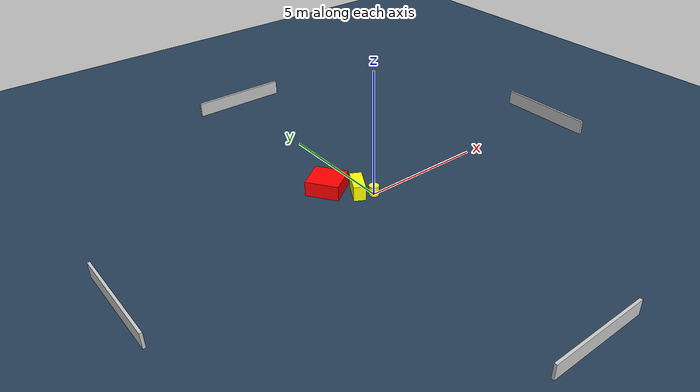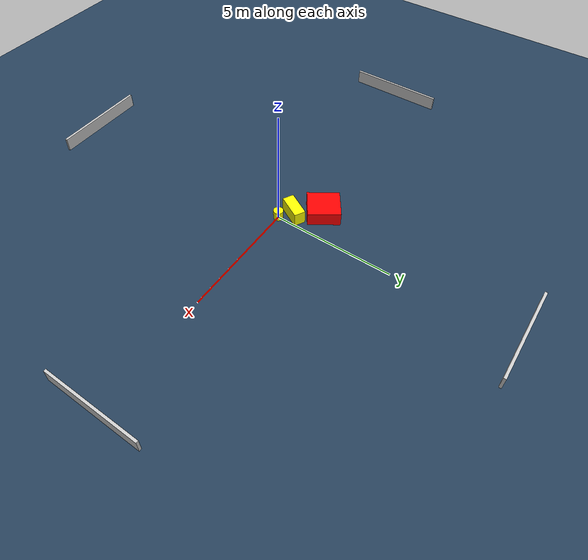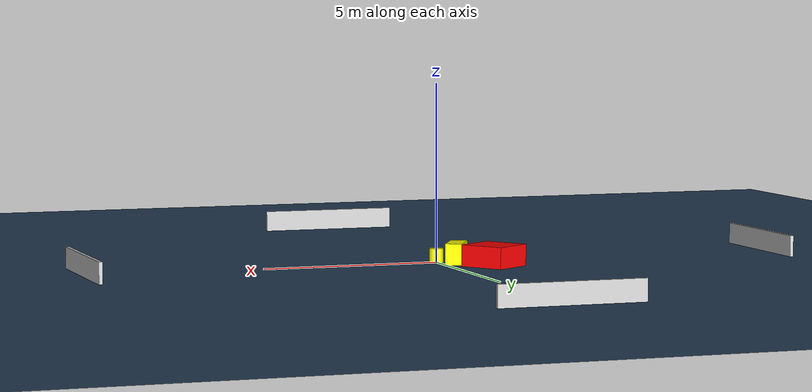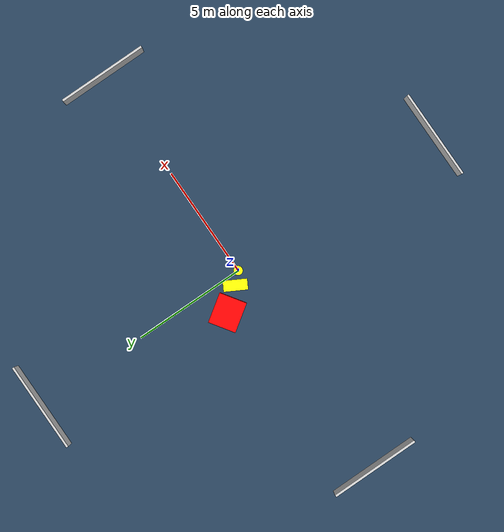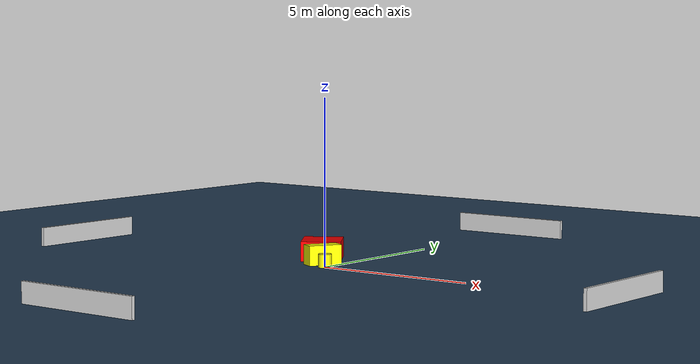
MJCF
<?xml version="1.0" ?>
<mujoco model="generated_environment">
  <option timestep="0.01" integrator="RK4" cone="elliptic"/>
  <default>
    <geom density="1"/>
  </default>
  <asset>
    <texture builtin="gradient" height="3072" name="skybox" rgb1="0.3 0.5 0.7" rgb2="0 0 0" type="skybox" width="512"/>
    <texture builtin="checker" height="300" name="groundplane" rgb1="0.2 0.3 0.4" rgb2="0.1 0.2 0.3" type="2d" width="300"/>
    <material name="groundplane" reflectance="0.2" texrepeat="5 5" texture="groundplane"/>
  </asset>
  <worldbody>
    <light dir="0 0 -1" directional="true" pos="0 0 1.5"/>
    <geom condim="3" friction="0.5 0.005 0.001" material="groundplane" name="floor" pos="0 0 0" size="0 0 0.05" type="plane"/>
    <body name="walls">
      <geom name="wall_1" condim="4" pos="-10.0 0.0 0.3" rgba="0.800000011920929 0.800000011920929 0.800000011920929 1.0" size="0.05 2.0 0.3" type="box"/>
      <geom name="wall_2" condim="4" pos="10.0 0.0 0.3" rgba="0.800000011920929 0.800000011920929 0.800000011920929 1.0" size="0.05 2.0 0.3" type="box"/>
      <geom name="wall_3" condim="4" pos="0.0 -10.0 0.3" rgba="0.800000011920929 0.800000011920929 0.800000011920929 1.0" size="2.0 0.05 0.3" type="box"/>
      <geom name="wall_4" condim="4" pos="0.0 10.0 0.3" rgba="0.800000011920929 0.800000011920929 0.800000011920929 1.0" size="2.0 0.05 0.3" type="box"/>
    </body>
    <body name="robot">
      <joint name="joint_x" type="slide" pos="0 0 0" axis="1 0 0"/>
      <joint name="joint_y" type="slide" pos="0 0 0" axis="0 1 0"/>
      <geom name="robot" type="cylinder" pos="0.0 0.0 0.2" size="0.2 0.2 0.0" mass="5.0" friction="1.0 0.005 0.0001" condim="4" rgba="1.0 1.0 0.0 1.0"/>
    </body>
    <body name="obstacle_1_movable">
      <geom name="obstacle_1_movable" condim="4" pos="-0.43794405501424777 0.44476164258778267 0.3" euler="0 0 61.220492938061874" friction="0.0 0.005 0.001" rgba="1.0 1.0 0.0 1.0" size="0.5167415655926431 0.23463010848851537 0.3" type="box" mass="0.1"/>
      <joint type="free"/>
    </body>
    <body name="obstacle_2_static">
      <geom name="obstacle_2_static" condim="4" pos="-1.1947436918739418 1.3649311971137894 0.3" euler="0 0 304.3123498570187" friction="0.0 0.005 0.001" rgba="1.0 0.0 0.0 1.0" size="0.6610526753685795 0.6053798081659463 0.3" type="box"/>
    </body>
  </worldbody>
  <actuator>
    <motor name="actuator_x" joint="joint_x" gear="1" ctrlrange="-1 1"/>
    <motor name="actuator_y" joint="joint_y" gear="1" ctrlrange="-1 1"/>
  </actuator>
</mujoco>
